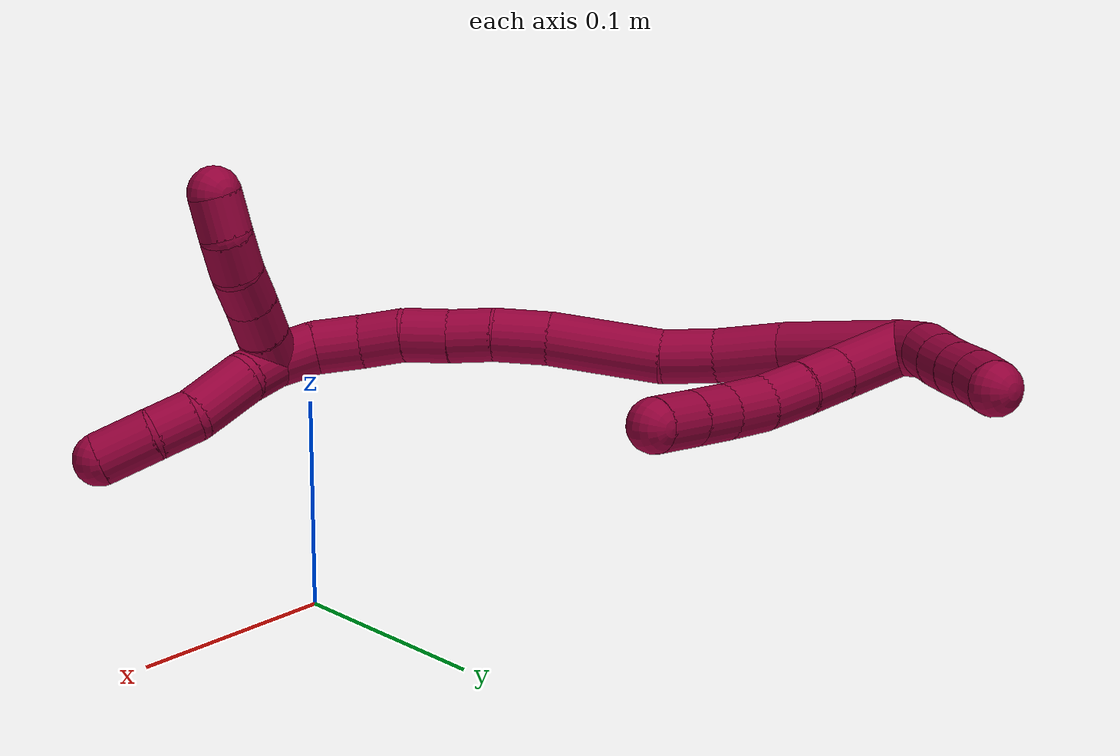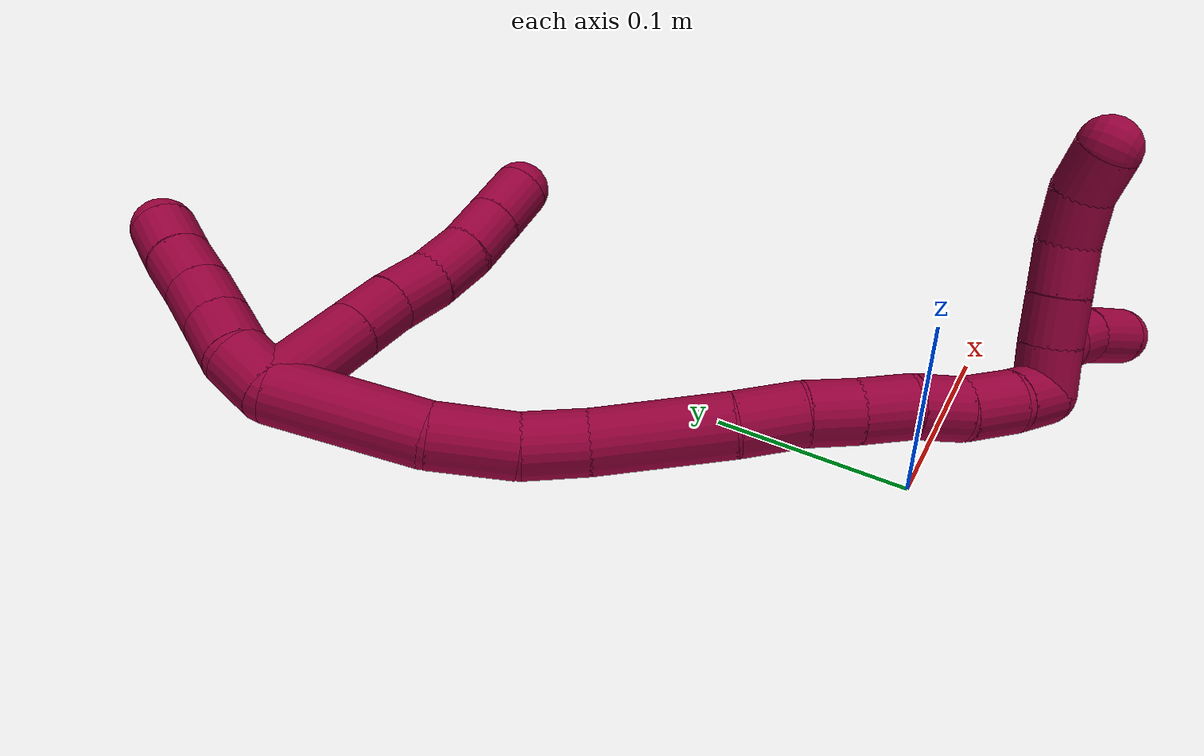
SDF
<sdf version="1.7">
 <world name="default">
  <model name="8">
   <static>0</static>
   <link name="8">
    <collision name="collision-cylinder-e_1_2_8">
     <pose>0.017881 -0.00998 0.000785 1.4923 1.06042 0.993206</pose>
     <geometry><cylinder><radius>0.0125</radius><length>0.040986</length></cylinder></geometry>
     <surface>
      <friction><ode><mu>1.16</mu><mu2>1.16</mu2><slip1>0</slip1><slip2>0</slip2></ode></friction>
      <contact><ode><kp>1e+06</kp><kd>1</kd><max_vel>0</max_vel><min_depth>0.001</min_depth></ode></contact>
     </surface>
    </collision>
    <visual name="visual-cylinder-e_1_2_8">
     <pose>0.017881 -0.00998 0.000785 1.4923 1.06042 0.993206</pose>
     <geometry><cylinder><radius>0.0125</radius><length>0.040986</length></cylinder></geometry>
     <material><ambient>0.584314 0 0.227451 1</ambient></material>
    </visual>
    <collision name="collision-cylinder-e_2_8_9">
     <pose>0.044993 -0.025139 0.001967 1.49437 1.0583 0.992907</pose>
     <geometry><cylinder><radius>0.0125</radius><length>0.021183</length></cylinder></geometry>
     <surface>
      <friction><ode><mu>1.16</mu><mu2>1.16</mu2><slip1>0</slip1><slip2>0</slip2></ode></friction>
      <contact><ode><kp>1e+06</kp><kd>1</kd><max_vel>0</max_vel><min_depth>0.001</min_depth></ode></contact>
     </surface>
    </collision>
    <visual name="visual-cylinder-e_2_8_9">
     <pose>0.044993 -0.025139 0.001967 1.49437 1.0583 0.992907</pose>
     <geometry><cylinder><radius>0.0125</radius><length>0.021183</length></cylinder></geometry>
     <material><ambient>0.584314 0 0.227451 1</ambient></material>
    </visual>
    <collision name="collision-cylinder-e_3_9_10">
     <pose>0.064007 -0.035646 0.001655 1.70286 1.06831 1.18788</pose>
     <geometry><cylinder><radius>0.0125</radius><length>0.022325</length></cylinder></geometry>
     <surface>
      <friction><ode><mu>1.16</mu><mu2>1.16</mu2><slip1>0</slip1><slip2>0</slip2></ode></friction>
      <contact><ode><kp>1e+06</kp><kd>1</kd><max_vel>0</max_vel><min_depth>0.001</min_depth></ode></contact>
     </surface>
    </collision>
    <visual name="visual-cylinder-e_3_9_10">
     <pose>0.064007 -0.035646 0.001655 1.70286 1.06831 1.18788</pose>
     <geometry><cylinder><radius>0.0125</radius><length>0.022325</length></cylinder></geometry>
     <material><ambient>0.584314 0 0.227451 1</ambient></material>
    </visual>
    <collision name="collision-cylinder-e_4_10_11">
     <pose>0.082635 -0.047473 0.000872 1.58235 0.937243 0.946589</pose>
     <geometry><cylinder><radius>0.0125</radius><length>0.021952</length></cylinder></geometry>
     <surface>
      <friction><ode><mu>1.16</mu><mu2>1.16</mu2><slip1>0</slip1><slip2>0</slip2></ode></friction>
      <contact><ode><kp>1e+06</kp><kd>1</kd><max_vel>0</max_vel><min_depth>0.001</min_depth></ode></contact>
     </surface>
    </collision>
    <visual name="visual-cylinder-e_4_10_11">
     <pose>0.082635 -0.047473 0.000872 1.58235 0.937243 0.946589</pose>
     <geometry><cylinder><radius>0.0125</radius><length>0.021952</length></cylinder></geometry>
     <material><ambient>0.584314 0 0.227451 1</ambient></material>
    </visual>
    <collision name="collision-cylinder-e_5_11_12">
     <pose>0.099536 -0.060665 0.002065 1.38369 0.868654 0.73378</pose>
     <geometry><cylinder><radius>0.0125</radius><length>0.0211</length></cylinder></geometry>
     <surface>
      <friction><ode><mu>1.16</mu><mu2>1.16</mu2><slip1>0</slip1><slip2>0</slip2></ode></friction>
      <contact><ode><kp>1e+06</kp><kd>1</kd><max_vel>0</max_vel><min_depth>0.001</min_depth></ode></contact>
     </surface>
    </collision>
    <visual name="visual-cylinder-e_5_11_12">
     <pose>0.099536 -0.060665 0.002065 1.38369 0.868654 0.73378</pose>
     <geometry><cylinder><radius>0.0125</radius><length>0.0211</length></cylinder></geometry>
     <material><ambient>0.584314 0 0.227451 1</ambient></material>
    </visual>
    <collision name="collision-cylinder-e_6_12_6">
     <pose>0.116123 -0.074528 0.004697 1.38259 0.86337 0.728397</pose>
     <geometry><cylinder><radius>0.0125</radius><length>0.022454</length></cylinder></geometry>
     <surface>
      <friction><ode><mu>1.16</mu><mu2>1.16</mu2><slip1>0</slip1><slip2>0</slip2></ode></friction>
      <contact><ode><kp>1e+06</kp><kd>1</kd><max_vel>0</max_vel><min_depth>0.001</min_depth></ode></contact>
     </surface>
    </collision>
    <visual name="visual-cylinder-e_6_12_6">
     <pose>0.116123 -0.074528 0.004697 1.38259 0.86337 0.728397</pose>
     <geometry><cylinder><radius>0.0125</radius><length>0.022454</length></cylinder></geometry>
     <material><ambient>0.584314 0 0.227451 1</ambient></material>
    </visual>
    <collision name="collision-cylinder-e_1_2_13">
     <pose>0.00051 -0.00141 0.009887 0.141623 0.051069 0.003623</pose>
     <geometry><cylinder><radius>0.0125</radius><length>0.02</length></cylinder></geometry>
     <surface>
      <friction><ode><mu>1.16</mu><mu2>1.16</mu2><slip1>0</slip1><slip2>0</slip2></ode></friction>
      <contact><ode><kp>1e+06</kp><kd>1</kd><max_vel>0</max_vel><min_depth>0.001</min_depth></ode></contact>
     </surface>
    </collision>
    <visual name="visual-cylinder-e_1_2_13">
     <pose>0.00051 -0.00141 0.009887 0.141623 0.051069 0.003623</pose>
     <geometry><cylinder><radius>0.0125</radius><length>0.02</length></cylinder></geometry>
     <material><ambient>0.584314 0 0.227451 1</ambient></material>
    </visual>
    <collision name="collision-cylinder-e_2_13_14">
     <pose>0.004496 -0.004658 0.028969 0.197376 0.354871 0.035505</pose>
     <geometry><cylinder><radius>0.0125</radius><length>0.02</length></cylinder></geometry>
     <surface>
      <friction><ode><mu>1.16</mu><mu2>1.16</mu2><slip1>0</slip1><slip2>0</slip2></ode></friction>
      <contact><ode><kp>1e+06</kp><kd>1</kd><max_vel>0</max_vel><min_depth>0.001</min_depth></ode></contact>
     </surface>
    </collision>
    <visual name="visual-cylinder-e_2_13_14">
     <pose>0.004496 -0.004658 0.028969 0.197376 0.354871 0.035505</pose>
     <geometry><cylinder><radius>0.0125</radius><length>0.02</length></cylinder></geometry>
     <material><ambient>0.584314 0 0.227451 1</ambient></material>
    </visual>
    <collision name="collision-cylinder-e_3_14_15">
     <pose>0.011077 -0.00858 0.047438 0.220907 0.315919 0.035328</pose>
     <geometry><cylinder><radius>0.0125</radius><length>0.02</length></cylinder></geometry>
     <surface>
      <friction><ode><mu>1.16</mu><mu2>1.16</mu2><slip1>0</slip1><slip2>0</slip2></ode></friction>
      <contact><ode><kp>1e+06</kp><kd>1</kd><max_vel>0</max_vel><min_depth>0.001</min_depth></ode></contact>
     </surface>
    </collision>
    <visual name="visual-cylinder-e_3_14_15">
     <pose>0.011077 -0.00858 0.047438 0.220907 0.315919 0.035328</pose>
     <geometry><cylinder><radius>0.0125</radius><length>0.02</length></cylinder></geometry>
     <material><ambient>0.584314 0 0.227451 1</ambient></material>
    </visual>
    <collision name="collision-cylinder-e_4_15_16">
     <pose>0.016907 -0.012637 0.066129 0.206694 0.275765 0.028782</pose>
     <geometry><cylinder><radius>0.0125</radius><length>0.02</length></cylinder></geometry>
     <surface>
      <friction><ode><mu>1.16</mu><mu2>1.16</mu2><slip1>0</slip1><slip2>0</slip2></ode></friction>
      <contact><ode><kp>1e+06</kp><kd>1</kd><max_vel>0</max_vel><min_depth>0.001</min_depth></ode></contact>
     </surface>
    </collision>
    <visual name="visual-cylinder-e_4_15_16">
     <pose>0.016907 -0.012637 0.066129 0.206694 0.275765 0.028782</pose>
     <geometry><cylinder><radius>0.0125</radius><length>0.02</length></cylinder></geometry>
     <material><ambient>0.584314 0 0.227451 1</ambient></material>
    </visual>
    <collision name="collision-cylinder-e_5_16_5">
     <pose>0.023056 -0.01673 0.0847 0.227391 0.349686 0.040336</pose>
     <geometry><cylinder><radius>0.0125</radius><length>0.02</length></cylinder></geometry>
     <surface>
      <friction><ode><mu>1.16</mu><mu2>1.16</mu2><slip1>0</slip1><slip2>0</slip2></ode></friction>
      <contact><ode><kp>1e+06</kp><kd>1</kd><max_vel>0</max_vel><min_depth>0.001</min_depth></ode></contact>
     </surface>
    </collision>
    <visual name="visual-cylinder-e_5_16_5">
     <pose>0.023056 -0.01673 0.0847 0.227391 0.349686 0.040336</pose>
     <geometry><cylinder><radius>0.0125</radius><length>0.02</length></cylinder></geometry>
     <material><ambient>0.584314 0 0.227451 1</ambient></material>
    </visual>
    <collision name="collision-cylinder-e_1_2_17">
     <pose>0.009458 -0.004336 -0.027087 2.98286 0.332022 2.25523</pose>
     <geometry><cylinder><radius>0.0125</radius><length>0.058033</length></cylinder></geometry>
     <surface>
      <friction><ode><mu>1.16</mu><mu2>1.16</mu2><slip1>0</slip1><slip2>0</slip2></ode></friction>
      <contact><ode><kp>1e+06</kp><kd>1</kd><max_vel>0</max_vel><min_depth>0.001</min_depth></ode></contact>
     </surface>
    </collision>
    <visual name="visual-cylinder-e_1_2_17">
     <pose>0.009458 -0.004336 -0.027087 2.98286 0.332022 2.25523</pose>
     <geometry><cylinder><radius>0.0125</radius><length>0.058033</length></cylinder></geometry>
     <material><ambient>0.584314 0 0.227451 1</ambient></material>
    </visual>
    <collision name="collision-cylinder-e_2_17_18">
     <pose>0.027033 -0.012539 -0.067719 2.86351 0.522748 2.17758</pose>
     <geometry><cylinder><radius>0.0125</radius><length>0.032514</length></cylinder></geometry>
     <surface>
      <friction><ode><mu>1.16</mu><mu2>1.16</mu2><slip1>0</slip1><slip2>0</slip2></ode></friction>
      <contact><ode><kp>1e+06</kp><kd>1</kd><max_vel>0</max_vel><min_depth>0.001</min_depth></ode></contact>
     </surface>
    </collision>
    <visual name="visual-cylinder-e_2_17_18">
     <pose>0.027033 -0.012539 -0.067719 2.86351 0.522748 2.17758</pose>
     <geometry><cylinder><radius>0.0125</radius><length>0.032514</length></cylinder></geometry>
     <material><ambient>0.584314 0 0.227451 1</ambient></material>
    </visual>
    <collision name="collision-cylinder-e_3_18_19">
     <pose>0.041966 -0.02138 -0.09071 2.65691 0.568247 1.73667</pose>
     <geometry><cylinder><radius>0.0125</radius><length>0.025334</length></cylinder></geometry>
     <surface>
      <friction><ode><mu>1.16</mu><mu2>1.16</mu2><slip1>0</slip1><slip2>0</slip2></ode></friction>
      <contact><ode><kp>1e+06</kp><kd>1</kd><max_vel>0</max_vel><min_depth>0.001</min_depth></ode></contact>
     </surface>
    </collision>
    <visual name="visual-cylinder-e_3_18_19">
     <pose>0.041966 -0.02138 -0.09071 2.65691 0.568247 1.73667</pose>
     <geometry><cylinder><radius>0.0125</radius><length>0.025334</length></cylinder></geometry>
     <material><ambient>0.584314 0 0.227451 1</ambient></material>
    </visual>
    <collision name="collision-cylinder-e_4_19_20">
     <pose>0.0594 -0.039689 -0.120581 2.5632 0.41056 1.22116</pose>
     <geometry><cylinder><radius>0.0125</radius><length>0.053204</length></cylinder></geometry>
     <surface>
      <friction><ode><mu>1.16</mu><mu2>1.16</mu2><slip1>0</slip1><slip2>0</slip2></ode></friction>
      <contact><ode><kp>1e+06</kp><kd>1</kd><max_vel>0</max_vel><min_depth>0.001</min_depth></ode></contact>
     </surface>
    </collision>
    <visual name="visual-cylinder-e_4_19_20">
     <pose>0.0594 -0.039689 -0.120581 2.5632 0.41056 1.22116</pose>
     <geometry><cylinder><radius>0.0125</radius><length>0.053204</length></cylinder></geometry>
     <material><ambient>0.584314 0 0.227451 1</ambient></material>
    </visual>
    <collision name="collision-cylinder-e_5_20_21">
     <pose>0.076502 -0.059394 -0.150185 2.53487 0.52579 1.42027</pose>
     <geometry><cylinder><radius>0.0125</radius><length>0.02584</length></cylinder></geometry>
     <surface>
      <friction><ode><mu>1.16</mu><mu2>1.16</mu2><slip1>0</slip1><slip2>0</slip2></ode></friction>
      <contact><ode><kp>1e+06</kp><kd>1</kd><max_vel>0</max_vel><min_depth>0.001</min_depth></ode></contact>
     </surface>
    </collision>
    <visual name="visual-cylinder-e_5_20_21">
     <pose>0.076502 -0.059394 -0.150185 2.53487 0.52579 1.42027</pose>
     <geometry><cylinder><radius>0.0125</radius><length>0.02584</length></cylinder></geometry>
     <material><ambient>0.584314 0 0.227451 1</ambient></material>
    </visual>
    <collision name="collision-cylinder-e_6_21_22">
     <pose>0.088655 -0.069707 -0.167113 2.67103 0.577852 1.78424</pose>
     <geometry><cylinder><radius>0.0125</radius><length>0.020754</length></cylinder></geometry>
     <surface>
      <friction><ode><mu>1.16</mu><mu2>1.16</mu2><slip1>0</slip1><slip2>0</slip2></ode></friction>
      <contact><ode><kp>1e+06</kp><kd>1</kd><max_vel>0</max_vel><min_depth>0.001</min_depth></ode></contact>
     </surface>
    </collision>
    <visual name="visual-cylinder-e_6_21_22">
     <pose>0.088655 -0.069707 -0.167113 2.67103 0.577852 1.78424</pose>
     <geometry><cylinder><radius>0.0125</radius><length>0.020754</length></cylinder></geometry>
     <material><ambient>0.584314 0 0.227451 1</ambient></material>
    </visual>
    <collision name="collision-cylinder-e_7_22_23">
     <pose>0.099784 -0.078319 -0.182807 2.61018 0.53486 1.57757</pose>
     <geometry><cylinder><radius>0.0125</radius><length>0.021426</length></cylinder></geometry>
     <surface>
      <friction><ode><mu>1.16</mu><mu2>1.16</mu2><slip1>0</slip1><slip2>0</slip2></ode></friction>
      <contact><ode><kp>1e+06</kp><kd>1</kd><max_vel>0</max_vel><min_depth>0.001</min_depth></ode></contact>
     </surface>
    </collision>
    <visual name="visual-cylinder-e_7_22_23">
     <pose>0.099784 -0.078319 -0.182807 2.61018 0.53486 1.57757</pose>
     <geometry><cylinder><radius>0.0125</radius><length>0.021426</length></cylinder></geometry>
     <material><ambient>0.584314 0 0.227451 1</ambient></material>
    </visual>
    <collision name="collision-cylinder-e_8_23_24">
     <pose>0.11133 -0.085694 -0.198425 2.80277 0.642232 2.19164</pose>
     <geometry><cylinder><radius>0.0125</radius><length>0.020319</length></cylinder></geometry>
     <surface>
      <friction><ode><mu>1.16</mu><mu2>1.16</mu2><slip1>0</slip1><slip2>0</slip2></ode></friction>
      <contact><ode><kp>1e+06</kp><kd>1</kd><max_vel>0</max_vel><min_depth>0.001</min_depth></ode></contact>
     </surface>
    </collision>
    <visual name="visual-cylinder-e_8_23_24">
     <pose>0.11133 -0.085694 -0.198425 2.80277 0.642232 2.19164</pose>
     <geometry><cylinder><radius>0.0125</radius><length>0.020319</length></cylinder></geometry>
     <material><ambient>0.584314 0 0.227451 1</ambient></material>
    </visual>
    <collision name="collision-cylinder-e_9_24_25">
     <pose>0.124896 -0.092842 -0.213048 2.57262 0.736576 1.8447</pose>
     <geometry><cylinder><radius>0.0125</radius><length>0.02227</length></cylinder></geometry>
     <surface>
      <friction><ode><mu>1.16</mu><mu2>1.16</mu2><slip1>0</slip1><slip2>0</slip2></ode></friction>
      <contact><ode><kp>1e+06</kp><kd>1</kd><max_vel>0</max_vel><min_depth>0.001</min_depth></ode></contact>
     </surface>
    </collision>
    <visual name="visual-cylinder-e_9_24_25">
     <pose>0.124896 -0.092842 -0.213048 2.57262 0.736576 1.8447</pose>
     <geometry><cylinder><radius>0.0125</radius><length>0.02227</length></cylinder></geometry>
     <material><ambient>0.584314 0 0.227451 1</ambient></material>
    </visual>
    <collision name="collision-cylinder-e_10_25_1">
     <pose>0.140866 -0.100566 -0.224495 2.51154 0.990401 2.05578</pose>
     <geometry><cylinder><radius>0.0125</radius><length>0.020304</length></cylinder></geometry>
     <surface>
      <friction><ode><mu>1.16</mu><mu2>1.16</mu2><slip1>0</slip1><slip2>0</slip2></ode></friction>
      <contact><ode><kp>1e+06</kp><kd>1</kd><max_vel>0</max_vel><min_depth>0.001</min_depth></ode></contact>
     </surface>
    </collision>
    <visual name="visual-cylinder-e_10_25_1">
     <pose>0.140866 -0.100566 -0.224495 2.51154 0.990401 2.05578</pose>
     <geometry><cylinder><radius>0.0125</radius><length>0.020304</length></cylinder></geometry>
     <material><ambient>0.584314 0 0.227451 1</ambient></material>
    </visual>
    <collision name="collision-cylinder-e_1_1_26">
     <pose>0.148525 -0.113234 -0.22565 1.22868 -0.083109 -0.058643</pose>
     <geometry><cylinder><radius>0.0125</radius><length>0.02</length></cylinder></geometry>
     <surface>
      <friction><ode><mu>1.16</mu><mu2>1.16</mu2><slip1>0</slip1><slip2>0</slip2></ode></friction>
      <contact><ode><kp>1e+06</kp><kd>1</kd><max_vel>0</max_vel><min_depth>0.001</min_depth></ode></contact>
     </surface>
    </collision>
    <visual name="visual-cylinder-e_1_1_26">
     <pose>0.148525 -0.113234 -0.22565 1.22868 -0.083109 -0.058643</pose>
     <geometry><cylinder><radius>0.0125</radius><length>0.02</length></cylinder></geometry>
     <material><ambient>0.584314 0 0.227451 1</ambient></material>
    </visual>
    <collision name="collision-cylinder-e_2_26_27">
     <pose>0.146552 -0.132122 -0.219401 1.27396 -0.114603 -0.084832</pose>
     <geometry><cylinder><radius>0.0125</radius><length>0.02</length></cylinder></geometry>
     <surface>
      <friction><ode><mu>1.16</mu><mu2>1.16</mu2><slip1>0</slip1><slip2>0</slip2></ode></friction>
      <contact><ode><kp>1e+06</kp><kd>1</kd><max_vel>0</max_vel><min_depth>0.001</min_depth></ode></contact>
     </surface>
    </collision>
    <visual name="visual-cylinder-e_2_26_27">
     <pose>0.146552 -0.132122 -0.219401 1.27396 -0.114603 -0.084832</pose>
     <geometry><cylinder><radius>0.0125</radius><length>0.02</length></cylinder></geometry>
     <material><ambient>0.584314 0 0.227451 1</ambient></material>
    </visual>
    <collision name="collision-cylinder-e_3_27_28">
     <pose>0.144633 -0.151132 -0.213502 1.26592 -0.077611 -0.056954</pose>
     <geometry><cylinder><radius>0.0125</radius><length>0.02</length></cylinder></geometry>
     <surface>
      <friction><ode><mu>1.16</mu><mu2>1.16</mu2><slip1>0</slip1><slip2>0</slip2></ode></friction>
      <contact><ode><kp>1e+06</kp><kd>1</kd><max_vel>0</max_vel><min_depth>0.001</min_depth></ode></contact>
     </surface>
    </collision>
    <visual name="visual-cylinder-e_3_27_28">
     <pose>0.144633 -0.151132 -0.213502 1.26592 -0.077611 -0.056954</pose>
     <geometry><cylinder><radius>0.0125</radius><length>0.02</length></cylinder></geometry>
     <material><ambient>0.584314 0 0.227451 1</ambient></material>
    </visual>
    <collision name="collision-cylinder-e_4_28_29">
     <pose>0.14133 -0.170138 -0.208657 1.37813 -0.255472 -0.210818</pose>
     <geometry><cylinder><radius>0.0125</radius><length>0.02</length></cylinder></geometry>
     <surface>
      <friction><ode><mu>1.16</mu><mu2>1.16</mu2><slip1>0</slip1><slip2>0</slip2></ode></friction>
      <contact><ode><kp>1e+06</kp><kd>1</kd><max_vel>0</max_vel><min_depth>0.001</min_depth></ode></contact>
     </surface>
    </collision>
    <visual name="visual-cylinder-e_4_28_29">
     <pose>0.14133 -0.170138 -0.208657 1.37813 -0.255472 -0.210818</pose>
     <geometry><cylinder><radius>0.0125</radius><length>0.02</length></cylinder></geometry>
     <material><ambient>0.584314 0 0.227451 1</ambient></material>
    </visual>
    <collision name="collision-cylinder-e_5_29_4">
     <pose>0.134472 -0.188614 -0.207583 1.65725 -0.447981 -0.486964</pose>
     <geometry><cylinder><radius>0.0125</radius><length>0.02</length></cylinder></geometry>
     <surface>
      <friction><ode><mu>1.16</mu><mu2>1.16</mu2><slip1>0</slip1><slip2>0</slip2></ode></friction>
      <contact><ode><kp>1e+06</kp><kd>1</kd><max_vel>0</max_vel><min_depth>0.001</min_depth></ode></contact>
     </surface>
    </collision>
    <visual name="visual-cylinder-e_5_29_4">
     <pose>0.134472 -0.188614 -0.207583 1.65725 -0.447981 -0.486964</pose>
     <geometry><cylinder><radius>0.0125</radius><length>0.02</length></cylinder></geometry>
     <material><ambient>0.584314 0 0.227451 1</ambient></material>
    </visual>
    <collision name="collision-cylinder-e_1_1_30">
     <pose>0.158639 -0.108367 -0.226535 1.07295 1.06467 0.673855</pose>
     <geometry><cylinder><radius>0.0125</radius><length>0.021229</length></cylinder></geometry>
     <surface>
      <friction><ode><mu>1.16</mu><mu2>1.16</mu2><slip1>0</slip1><slip2>0</slip2></ode></friction>
      <contact><ode><kp>1e+06</kp><kd>1</kd><max_vel>0</max_vel><min_depth>0.001</min_depth></ode></contact>
     </surface>
    </collision>
    <visual name="visual-cylinder-e_1_1_30">
     <pose>0.158639 -0.108367 -0.226535 1.07295 1.06467 0.673855</pose>
     <geometry><cylinder><radius>0.0125</radius><length>0.021229</length></cylinder></geometry>
     <material><ambient>0.584314 0 0.227451 1</ambient></material>
    </visual>
    <collision name="collision-cylinder-e_2_30_31">
     <pose>0.183167 -0.116405 -0.224221 1.61132 1.34387 1.38353</pose>
     <geometry><cylinder><radius>0.0125</radius><length>0.031291</length></cylinder></geometry>
     <surface>
      <friction><ode><mu>1.16</mu><mu2>1.16</mu2><slip1>0</slip1><slip2>0</slip2></ode></friction>
      <contact><ode><kp>1e+06</kp><kd>1</kd><max_vel>0</max_vel><min_depth>0.001</min_depth></ode></contact>
     </surface>
    </collision>
    <visual name="visual-cylinder-e_2_30_31">
     <pose>0.183167 -0.116405 -0.224221 1.61132 1.34387 1.38353</pose>
     <geometry><cylinder><radius>0.0125</radius><length>0.031291</length></cylinder></geometry>
     <material><ambient>0.584314 0 0.227451 1</ambient></material>
    </visual>
    <collision name="collision-cylinder-e_3_31_32">
     <pose>0.207579 -0.12272 -0.22766 2.43774 1.13011 2.09164</pose>
     <geometry><cylinder><radius>0.0125</radius><length>0.020272</length></cylinder></geometry>
     <surface>
      <friction><ode><mu>1.16</mu><mu2>1.16</mu2><slip1>0</slip1><slip2>0</slip2></ode></friction>
      <contact><ode><kp>1e+06</kp><kd>1</kd><max_vel>0</max_vel><min_depth>0.001</min_depth></ode></contact>
     </surface>
    </collision>
    <visual name="visual-cylinder-e_3_31_32">
     <pose>0.207579 -0.12272 -0.22766 2.43774 1.13011 2.09164</pose>
     <geometry><cylinder><radius>0.0125</radius><length>0.020272</length></cylinder></geometry>
     <material><ambient>0.584314 0 0.227451 1</ambient></material>
    </visual>
    <collision name="collision-cylinder-e_4_32_3">
     <pose>0.228241 -0.127809 -0.237863 2.82145 1.00639 2.57098</pose>
     <geometry><cylinder><radius>0.0125</radius><length>0.027208</length></cylinder></geometry>
     <surface>
      <friction><ode><mu>1.16</mu><mu2>1.16</mu2><slip1>0</slip1><slip2>0</slip2></ode></friction>
      <contact><ode><kp>1e+06</kp><kd>1</kd><max_vel>0</max_vel><min_depth>0.001</min_depth></ode></contact>
     </surface>
    </collision>
    <visual name="visual-cylinder-e_4_32_3">
     <pose>0.228241 -0.127809 -0.237863 2.82145 1.00639 2.57098</pose>
     <geometry><cylinder><radius>0.0125</radius><length>0.027208</length></cylinder></geometry>
     <material><ambient>0.584314 0 0.227451 1</ambient></material>
    </visual>
    <collision name="collision-sphere-3">
     <pose>0.239735 -0.130099 -0.24477 0 -0 0</pose>
     <geometry><sphere><radius>0.0125</radius></sphere></geometry>
     <surface>
      <friction><ode><mu>1.16</mu><mu2>1.16</mu2><slip1>0</slip1><slip2>0</slip2></ode></friction>
      <contact><ode><kp>1e+06</kp><kd>1</kd><max_vel>0</max_vel><min_depth>0.001</min_depth></ode></contact>
     </surface>
    </collision>
    <visual name="visual-sphere-3">
     <pose>0.239735 -0.130099 -0.24477 0 -0 0</pose>
     <geometry><sphere><radius>0.0125</radius></sphere></geometry>
     <material><ambient>0.584314 0 0.227451 1</ambient></material>
    </visual>
    <collision name="collision-sphere-32">
     <pose>0.216747 -0.125519 -0.230956 0 -0 0</pose>
     <geometry><sphere><radius>0.0125</radius></sphere></geometry>
     <surface>
      <friction><ode><mu>1.16</mu><mu2>1.16</mu2><slip1>0</slip1><slip2>0</slip2></ode></friction>
      <contact><ode><kp>1e+06</kp><kd>1</kd><max_vel>0</max_vel><min_depth>0.001</min_depth></ode></contact>
     </surface>
    </collision>
    <visual name="visual-sphere-32">
     <pose>0.216747 -0.125519 -0.230956 0 -0 0</pose>
     <geometry><sphere><radius>0.0125</radius></sphere></geometry>
     <material><ambient>0.584314 0 0.227451 1</ambient></material>
    </visual>
    <collision name="collision-sphere-31">
     <pose>0.198412 -0.119922 -0.224363 0 -0 0</pose>
     <geometry><sphere><radius>0.0125</radius></sphere></geometry>
     <surface>
      <friction><ode><mu>1.16</mu><mu2>1.16</mu2><slip1>0</slip1><slip2>0</slip2></ode></friction>
      <contact><ode><kp>1e+06</kp><kd>1</kd><max_vel>0</max_vel><min_depth>0.001</min_depth></ode></contact>
     </surface>
    </collision>
    <visual name="visual-sphere-31">
     <pose>0.198412 -0.119922 -0.224363 0 -0 0</pose>
     <geometry><sphere><radius>0.0125</radius></sphere></geometry>
     <material><ambient>0.584314 0 0.227451 1</ambient></material>
    </visual>
    <collision name="collision-sphere-30">
     <pose>0.167923 -0.112888 -0.224078 0 -0 0</pose>
     <geometry><sphere><radius>0.0125</radius></sphere></geometry>
     <surface>
      <friction><ode><mu>1.16</mu><mu2>1.16</mu2><slip1>0</slip1><slip2>0</slip2></ode></friction>
      <contact><ode><kp>1e+06</kp><kd>1</kd><max_vel>0</max_vel><min_depth>0.001</min_depth></ode></contact>
     </surface>
    </collision>
    <visual name="visual-sphere-30">
     <pose>0.167923 -0.112888 -0.224078 0 -0 0</pose>
     <geometry><sphere><radius>0.0125</radius></sphere></geometry>
     <material><ambient>0.584314 0 0.227451 1</ambient></material>
    </visual>
    <collision name="collision-sphere-4">
     <pose>0.13014 -0.197594 -0.208361 0 -0 0</pose>
     <geometry><sphere><radius>0.0125</radius></sphere></geometry>
     <surface>
      <friction><ode><mu>1.16</mu><mu2>1.16</mu2><slip1>0</slip1><slip2>0</slip2></ode></friction>
      <contact><ode><kp>1e+06</kp><kd>1</kd><max_vel>0</max_vel><min_depth>0.001</min_depth></ode></contact>
     </surface>
    </collision>
    <visual name="visual-sphere-4">
     <pose>0.13014 -0.197594 -0.208361 0 -0 0</pose>
     <geometry><sphere><radius>0.0125</radius></sphere></geometry>
     <material><ambient>0.584314 0 0.227451 1</ambient></material>
    </visual>
    <collision name="collision-sphere-29">
     <pose>0.138803 -0.179635 -0.206804 0 -0 0</pose>
     <geometry><sphere><radius>0.0125</radius></sphere></geometry>
     <surface>
      <friction><ode><mu>1.16</mu><mu2>1.16</mu2><slip1>0</slip1><slip2>0</slip2></ode></friction>
      <contact><ode><kp>1e+06</kp><kd>1</kd><max_vel>0</max_vel><min_depth>0.001</min_depth></ode></contact>
     </surface>
    </collision>
    <visual name="visual-sphere-29">
     <pose>0.138803 -0.179635 -0.206804 0 -0 0</pose>
     <geometry><sphere><radius>0.0125</radius></sphere></geometry>
     <material><ambient>0.584314 0 0.227451 1</ambient></material>
    </visual>
    <collision name="collision-sphere-28">
     <pose>0.143857 -0.160642 -0.21051 0 -0 0</pose>
     <geometry><sphere><radius>0.0125</radius></sphere></geometry>
     <surface>
      <friction><ode><mu>1.16</mu><mu2>1.16</mu2><slip1>0</slip1><slip2>0</slip2></ode></friction>
      <contact><ode><kp>1e+06</kp><kd>1</kd><max_vel>0</max_vel><min_depth>0.001</min_depth></ode></contact>
     </surface>
    </collision>
    <visual name="visual-sphere-28">
     <pose>0.143857 -0.160642 -0.21051 0 -0 0</pose>
     <geometry><sphere><radius>0.0125</radius></sphere></geometry>
     <material><ambient>0.584314 0 0.227451 1</ambient></material>
    </visual>
    <collision name="collision-sphere-27">
     <pose>0.145408 -0.141622 -0.216495 0 -0 0</pose>
     <geometry><sphere><radius>0.0125</radius></sphere></geometry>
     <surface>
      <friction><ode><mu>1.16</mu><mu2>1.16</mu2><slip1>0</slip1><slip2>0</slip2></ode></friction>
      <contact><ode><kp>1e+06</kp><kd>1</kd><max_vel>0</max_vel><min_depth>0.001</min_depth></ode></contact>
     </surface>
    </collision>
    <visual name="visual-sphere-27">
     <pose>0.145408 -0.141622 -0.216495 0 -0 0</pose>
     <geometry><sphere><radius>0.0125</radius></sphere></geometry>
     <material><ambient>0.584314 0 0.227451 1</ambient></material>
    </visual>
    <collision name="collision-sphere-26">
     <pose>0.147695 -0.122622 -0.222306 0 -0 0</pose>
     <geometry><sphere><radius>0.0125</radius></sphere></geometry>
     <surface>
      <friction><ode><mu>1.16</mu><mu2>1.16</mu2><slip1>0</slip1><slip2>0</slip2></ode></friction>
      <contact><ode><kp>1e+06</kp><kd>1</kd><max_vel>0</max_vel><min_depth>0.001</min_depth></ode></contact>
     </surface>
    </collision>
    <visual name="visual-sphere-26">
     <pose>0.147695 -0.122622 -0.222306 0 -0 0</pose>
     <geometry><sphere><radius>0.0125</radius></sphere></geometry>
     <material><ambient>0.584314 0 0.227451 1</ambient></material>
    </visual>
    <collision name="collision-sphere-1">
     <pose>0.149355 -0.103846 -0.228993 0 -0 0</pose>
     <geometry><sphere><radius>0.0125</radius></sphere></geometry>
     <surface>
      <friction><ode><mu>1.16</mu><mu2>1.16</mu2><slip1>0</slip1><slip2>0</slip2></ode></friction>
      <contact><ode><kp>1e+06</kp><kd>1</kd><max_vel>0</max_vel><min_depth>0.001</min_depth></ode></contact>
     </surface>
    </collision>
    <visual name="visual-sphere-1">
     <pose>0.149355 -0.103846 -0.228993 0 -0 0</pose>
     <geometry><sphere><radius>0.0125</radius></sphere></geometry>
     <material><ambient>0.584314 0 0.227451 1</ambient></material>
    </visual>
    <collision name="collision-sphere-25">
     <pose>0.132376 -0.097286 -0.219997 0 -0 0</pose>
     <geometry><sphere><radius>0.0125</radius></sphere></geometry>
     <surface>
      <friction><ode><mu>1.16</mu><mu2>1.16</mu2><slip1>0</slip1><slip2>0</slip2></ode></friction>
      <contact><ode><kp>1e+06</kp><kd>1</kd><max_vel>0</max_vel><min_depth>0.001</min_depth></ode></contact>
     </surface>
    </collision>
    <visual name="visual-sphere-25">
     <pose>0.132376 -0.097286 -0.219997 0 -0 0</pose>
     <geometry><sphere><radius>0.0125</radius></sphere></geometry>
     <material><ambient>0.584314 0 0.227451 1</ambient></material>
    </visual>
    <collision name="collision-sphere-24">
     <pose>0.117416 -0.088398 -0.206098 0 -0 0</pose>
     <geometry><sphere><radius>0.0125</radius></sphere></geometry>
     <surface>
      <friction><ode><mu>1.16</mu><mu2>1.16</mu2><slip1>0</slip1><slip2>0</slip2></ode></friction>
      <contact><ode><kp>1e+06</kp><kd>1</kd><max_vel>0</max_vel><min_depth>0.001</min_depth></ode></contact>
     </surface>
    </collision>
    <visual name="visual-sphere-24">
     <pose>0.117416 -0.088398 -0.206098 0 -0 0</pose>
     <geometry><sphere><radius>0.0125</radius></sphere></geometry>
     <material><ambient>0.584314 0 0.227451 1</ambient></material>
    </visual>
    <collision name="collision-sphere-23">
     <pose>0.105245 -0.08299 -0.190752 0 -0 0</pose>
     <geometry><sphere><radius>0.0125</radius></sphere></geometry>
     <surface>
      <friction><ode><mu>1.16</mu><mu2>1.16</mu2><slip1>0</slip1><slip2>0</slip2></ode></friction>
      <contact><ode><kp>1e+06</kp><kd>1</kd><max_vel>0</max_vel><min_depth>0.001</min_depth></ode></contact>
     </surface>
    </collision>
    <visual name="visual-sphere-23">
     <pose>0.105245 -0.08299 -0.190752 0 -0 0</pose>
     <geometry><sphere><radius>0.0125</radius></sphere></geometry>
     <material><ambient>0.584314 0 0.227451 1</ambient></material>
    </visual>
    <collision name="collision-sphere-22">
     <pose>0.094323 -0.073648 -0.174861 0 -0 0</pose>
     <geometry><sphere><radius>0.0125</radius></sphere></geometry>
     <surface>
      <friction><ode><mu>1.16</mu><mu2>1.16</mu2><slip1>0</slip1><slip2>0</slip2></ode></friction>
      <contact><ode><kp>1e+06</kp><kd>1</kd><max_vel>0</max_vel><min_depth>0.001</min_depth></ode></contact>
     </surface>
    </collision>
    <visual name="visual-sphere-22">
     <pose>0.094323 -0.073648 -0.174861 0 -0 0</pose>
     <geometry><sphere><radius>0.0125</radius></sphere></geometry>
     <material><ambient>0.584314 0 0.227451 1</ambient></material>
    </visual>
    <collision name="collision-sphere-21">
     <pose>0.082987 -0.065766 -0.159365 0 -0 0</pose>
     <geometry><sphere><radius>0.0125</radius></sphere></geometry>
     <surface>
      <friction><ode><mu>1.16</mu><mu2>1.16</mu2><slip1>0</slip1><slip2>0</slip2></ode></friction>
      <contact><ode><kp>1e+06</kp><kd>1</kd><max_vel>0</max_vel><min_depth>0.001</min_depth></ode></contact>
     </surface>
    </collision>
    <visual name="visual-sphere-21">
     <pose>0.082987 -0.065766 -0.159365 0 -0 0</pose>
     <geometry><sphere><radius>0.0125</radius></sphere></geometry>
     <material><ambient>0.584314 0 0.227451 1</ambient></material>
    </visual>
    <collision name="collision-sphere-12">
     <pose>0.10759 -0.06736 0.003332 0 -0 0</pose>
     <geometry><sphere><radius>0.0125</radius></sphere></geometry>
     <surface>
      <friction><ode><mu>1.16</mu><mu2>1.16</mu2><slip1>0</slip1><slip2>0</slip2></ode></friction>
      <contact><ode><kp>1e+06</kp><kd>1</kd><max_vel>0</max_vel><min_depth>0.001</min_depth></ode></contact>
     </surface>
    </collision>
    <visual name="visual-sphere-12">
     <pose>0.10759 -0.06736 0.003332 0 -0 0</pose>
     <geometry><sphere><radius>0.0125</radius></sphere></geometry>
     <material><ambient>0.584314 0 0.227451 1</ambient></material>
    </visual>
    <collision name="collision-sphere-11">
     <pose>0.091482 -0.053971 0.000797 0 -0 0</pose>
     <geometry><sphere><radius>0.0125</radius></sphere></geometry>
     <surface>
      <friction><ode><mu>1.16</mu><mu2>1.16</mu2><slip1>0</slip1><slip2>0</slip2></ode></friction>
      <contact><ode><kp>1e+06</kp><kd>1</kd><max_vel>0</max_vel><min_depth>0.001</min_depth></ode></contact>
     </surface>
    </collision>
    <visual name="visual-sphere-11">
     <pose>0.091482 -0.053971 0.000797 0 -0 0</pose>
     <geometry><sphere><radius>0.0125</radius></sphere></geometry>
     <material><ambient>0.584314 0 0.227451 1</ambient></material>
    </visual>
    <collision name="collision-sphere-10">
     <pose>0.073789 -0.040975 0.000947 0 -0 0</pose>
     <geometry><sphere><radius>0.0125</radius></sphere></geometry>
     <surface>
      <friction><ode><mu>1.16</mu><mu2>1.16</mu2><slip1>0</slip1><slip2>0</slip2></ode></friction>
      <contact><ode><kp>1e+06</kp><kd>1</kd><max_vel>0</max_vel><min_depth>0.001</min_depth></ode></contact>
     </surface>
    </collision>
    <visual name="visual-sphere-10">
     <pose>0.073789 -0.040975 0.000947 0 -0 0</pose>
     <geometry><sphere><radius>0.0125</radius></sphere></geometry>
     <material><ambient>0.584314 0 0.227451 1</ambient></material>
    </visual>
    <collision name="collision-sphere-9">
     <pose>0.054224 -0.030317 0.002363 0 -0 0</pose>
     <geometry><sphere><radius>0.0125</radius></sphere></geometry>
     <surface>
      <friction><ode><mu>1.16</mu><mu2>1.16</mu2><slip1>0</slip1><slip2>0</slip2></ode></friction>
      <contact><ode><kp>1e+06</kp><kd>1</kd><max_vel>0</max_vel><min_depth>0.001</min_depth></ode></contact>
     </surface>
    </collision>
    <visual name="visual-sphere-9">
     <pose>0.054224 -0.030317 0.002363 0 -0 0</pose>
     <geometry><sphere><radius>0.0125</radius></sphere></geometry>
     <material><ambient>0.584314 0 0.227451 1</ambient></material>
    </visual>
    <collision name="collision-sphere-2">
     <geometry><sphere><radius>0.0125</radius></sphere></geometry>
     <surface>
      <friction><ode><mu>1.16</mu><mu2>1.16</mu2><slip1>0</slip1><slip2>0</slip2></ode></friction>
      <contact><ode><kp>1e+06</kp><kd>1</kd><max_vel>0</max_vel><min_depth>0.001</min_depth></ode></contact>
     </surface>
    </collision>
    <visual name="visual-sphere-2">
     <geometry><sphere><radius>0.0125</radius></sphere></geometry>
     <material><ambient>0.584314 0 0.227451 1</ambient></material>
    </visual>
    <collision name="collision-sphere-19">
     <pose>0.048783 -0.026354 -0.100157 0 -0 0</pose>
     <geometry><sphere><radius>0.0125</radius></sphere></geometry>
     <surface>
      <friction><ode><mu>1.16</mu><mu2>1.16</mu2><slip1>0</slip1><slip2>0</slip2></ode></friction>
      <contact><ode><kp>1e+06</kp><kd>1</kd><max_vel>0</max_vel><min_depth>0.001</min_depth></ode></contact>
     </surface>
    </collision>
    <visual name="visual-sphere-19">
     <pose>0.048783 -0.026354 -0.100157 0 -0 0</pose>
     <geometry><sphere><radius>0.0125</radius></sphere></geometry>
     <material><ambient>0.584314 0 0.227451 1</ambient></material>
    </visual>
    <collision name="collision-sphere-8">
     <pose>0.035762 -0.01996 0.00157 0 -0 0</pose>
     <geometry><sphere><radius>0.0125</radius></sphere></geometry>
     <surface>
      <friction><ode><mu>1.16</mu><mu2>1.16</mu2><slip1>0</slip1><slip2>0</slip2></ode></friction>
      <contact><ode><kp>1e+06</kp><kd>1</kd><max_vel>0</max_vel><min_depth>0.001</min_depth></ode></contact>
     </surface>
    </collision>
    <visual name="visual-sphere-8">
     <pose>0.035762 -0.01996 0.00157 0 -0 0</pose>
     <geometry><sphere><radius>0.0125</radius></sphere></geometry>
     <material><ambient>0.584314 0 0.227451 1</ambient></material>
    </visual>
    <collision name="collision-sphere-6">
     <pose>0.124656 -0.081695 0.006062 0 -0 0</pose>
     <geometry><sphere><radius>0.0125</radius></sphere></geometry>
     <surface>
      <friction><ode><mu>1.16</mu><mu2>1.16</mu2><slip1>0</slip1><slip2>0</slip2></ode></friction>
      <contact><ode><kp>1e+06</kp><kd>1</kd><max_vel>0</max_vel><min_depth>0.001</min_depth></ode></contact>
     </surface>
    </collision>
    <visual name="visual-sphere-6">
     <pose>0.124656 -0.081695 0.006062 0 -0 0</pose>
     <geometry><sphere><radius>0.0125</radius></sphere></geometry>
     <material><ambient>0.584314 0 0.227451 1</ambient></material>
    </visual>
    <collision name="collision-sphere-13">
     <pose>0.001021 -0.002819 0.019774 0 -0 0</pose>
     <geometry><sphere><radius>0.0125</radius></sphere></geometry>
     <surface>
      <friction><ode><mu>1.16</mu><mu2>1.16</mu2><slip1>0</slip1><slip2>0</slip2></ode></friction>
      <contact><ode><kp>1e+06</kp><kd>1</kd><max_vel>0</max_vel><min_depth>0.001</min_depth></ode></contact>
     </surface>
    </collision>
    <visual name="visual-sphere-13">
     <pose>0.001021 -0.002819 0.019774 0 -0 0</pose>
     <geometry><sphere><radius>0.0125</radius></sphere></geometry>
     <material><ambient>0.584314 0 0.227451 1</ambient></material>
    </visual>
    <collision name="collision-sphere-14">
     <pose>0.00797 -0.006497 0.038164 0 -0 0</pose>
     <geometry><sphere><radius>0.0125</radius></sphere></geometry>
     <surface>
      <friction><ode><mu>1.16</mu><mu2>1.16</mu2><slip1>0</slip1><slip2>0</slip2></ode></friction>
      <contact><ode><kp>1e+06</kp><kd>1</kd><max_vel>0</max_vel><min_depth>0.001</min_depth></ode></contact>
     </surface>
    </collision>
    <visual name="visual-sphere-14">
     <pose>0.00797 -0.006497 0.038164 0 -0 0</pose>
     <geometry><sphere><radius>0.0125</radius></sphere></geometry>
     <material><ambient>0.584314 0 0.227451 1</ambient></material>
    </visual>
    <collision name="collision-sphere-15">
     <pose>0.014184 -0.010662 0.056712 0 -0 0</pose>
     <geometry><sphere><radius>0.0125</radius></sphere></geometry>
     <surface>
      <friction><ode><mu>1.16</mu><mu2>1.16</mu2><slip1>0</slip1><slip2>0</slip2></ode></friction>
      <contact><ode><kp>1e+06</kp><kd>1</kd><max_vel>0</max_vel><min_depth>0.001</min_depth></ode></contact>
     </surface>
    </collision>
    <visual name="visual-sphere-15">
     <pose>0.014184 -0.010662 0.056712 0 -0 0</pose>
     <geometry><sphere><radius>0.0125</radius></sphere></geometry>
     <material><ambient>0.584314 0 0.227451 1</ambient></material>
    </visual>
    <collision name="collision-sphere-16">
     <pose>0.01963 -0.014612 0.075547 0 -0 0</pose>
     <geometry><sphere><radius>0.0125</radius></sphere></geometry>
     <surface>
      <friction><ode><mu>1.16</mu><mu2>1.16</mu2><slip1>0</slip1><slip2>0</slip2></ode></friction>
      <contact><ode><kp>1e+06</kp><kd>1</kd><max_vel>0</max_vel><min_depth>0.001</min_depth></ode></contact>
     </surface>
    </collision>
    <visual name="visual-sphere-16">
     <pose>0.01963 -0.014612 0.075547 0 -0 0</pose>
     <geometry><sphere><radius>0.0125</radius></sphere></geometry>
     <material><ambient>0.584314 0 0.227451 1</ambient></material>
    </visual>
    <collision name="collision-sphere-5">
     <pose>0.026482 -0.018848 0.093853 0 -0 0</pose>
     <geometry><sphere><radius>0.0125</radius></sphere></geometry>
     <surface>
      <friction><ode><mu>1.16</mu><mu2>1.16</mu2><slip1>0</slip1><slip2>0</slip2></ode></friction>
      <contact><ode><kp>1e+06</kp><kd>1</kd><max_vel>0</max_vel><min_depth>0.001</min_depth></ode></contact>
     </surface>
    </collision>
    <visual name="visual-sphere-5">
     <pose>0.026482 -0.018848 0.093853 0 -0 0</pose>
     <geometry><sphere><radius>0.0125</radius></sphere></geometry>
     <material><ambient>0.584314 0 0.227451 1</ambient></material>
    </visual>
    <collision name="collision-sphere-17">
     <pose>0.018916 -0.008672 -0.054174 0 -0 0</pose>
     <geometry><sphere><radius>0.0125</radius></sphere></geometry>
     <surface>
      <friction><ode><mu>1.16</mu><mu2>1.16</mu2><slip1>0</slip1><slip2>0</slip2></ode></friction>
      <contact><ode><kp>1e+06</kp><kd>1</kd><max_vel>0</max_vel><min_depth>0.001</min_depth></ode></contact>
     </surface>
    </collision>
    <visual name="visual-sphere-17">
     <pose>0.018916 -0.008672 -0.054174 0 -0 0</pose>
     <geometry><sphere><radius>0.0125</radius></sphere></geometry>
     <material><ambient>0.584314 0 0.227451 1</ambient></material>
    </visual>
    <collision name="collision-sphere-18">
     <pose>0.035149 -0.016406 -0.081264 0 -0 0</pose>
     <geometry><sphere><radius>0.0125</radius></sphere></geometry>
     <surface>
      <friction><ode><mu>1.16</mu><mu2>1.16</mu2><slip1>0</slip1><slip2>0</slip2></ode></friction>
      <contact><ode><kp>1e+06</kp><kd>1</kd><max_vel>0</max_vel><min_depth>0.001</min_depth></ode></contact>
     </surface>
    </collision>
    <visual name="visual-sphere-18">
     <pose>0.035149 -0.016406 -0.081264 0 -0 0</pose>
     <geometry><sphere><radius>0.0125</radius></sphere></geometry>
     <material><ambient>0.584314 0 0.227451 1</ambient></material>
    </visual>
    <collision name="collision-sphere-20">
     <pose>0.070018 -0.053023 -0.141005 0 -0 0</pose>
     <geometry><sphere><radius>0.0125</radius></sphere></geometry>
     <surface>
      <friction><ode><mu>1.16</mu><mu2>1.16</mu2><slip1>0</slip1><slip2>0</slip2></ode></friction>
      <contact><ode><kp>1e+06</kp><kd>1</kd><max_vel>0</max_vel><min_depth>0.001</min_depth></ode></contact>
     </surface>
    </collision>
    <visual name="visual-sphere-20">
     <pose>0.070018 -0.053023 -0.141005 0 -0 0</pose>
     <geometry><sphere><radius>0.0125</radius></sphere></geometry>
     <material><ambient>0.584314 0 0.227451 1</ambient></material>
    </visual>
    <inertial>
     <pose>0.08546 -0.063265 -0.101966 0 -0 0</pose>
     <mass>0.75</mass>
     <inertia><ixx>8.4e-05</ixx><ixy>0</ixy><ixz>0</ixz><iyy>7.1e-05</iyy><iyz>0</iyz><izz>-1.9e-05</izz></inertia>
    </inertial>
   </link>
   <pose>-0.181261 0.193133 0.130796 -1.38165 0.566594 0.012211</pose>
  </model>
 </world>
</sdf>
